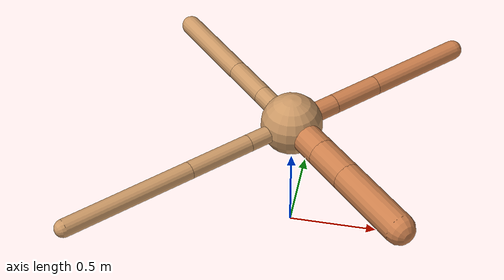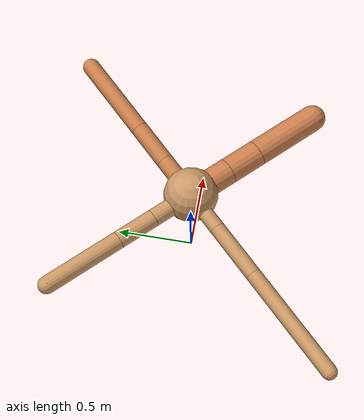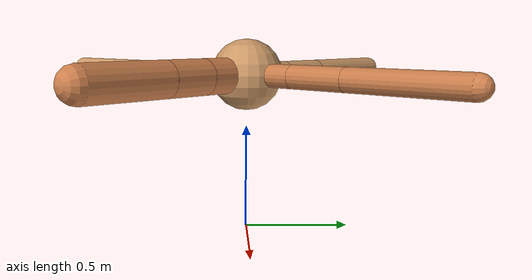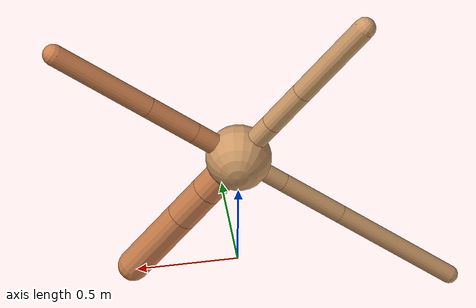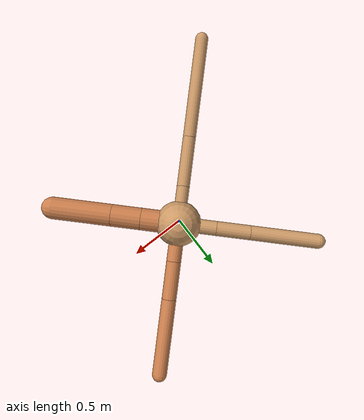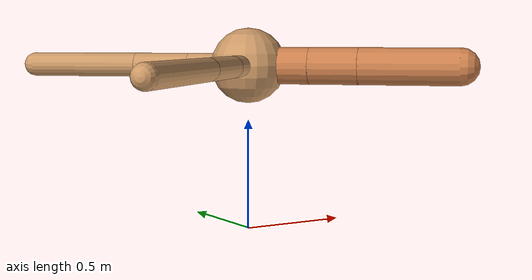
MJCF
<?xml version="1.0" ?>
<mujoco model="ant">

	<compiler angle="degree" coordinate="local" inertiafromgeom="true"/>

	<option integrator="RK4" timestep="0.01"/>

	<custom>

		<numeric data="0.0 0.0 0.55 1.0 0.0 0.0 0.0 0.0 1.0 0.0 -1.0 0.0 -1.0 0.0 1.0" name="init_qpos"/>

	</custom>

	<default>

		<joint armature="1" damping="1" limited="true"/>

		<geom conaffinity="0" condim="3" density="5.0" friction="1.5 0.1 0.1" margin="0.01" rgba="0.8 0.6 0.4 1"/>

	</default>

	<worldbody>

		<body name="torso" pos="0 0 0.75">

			<geom name="torso_geom" pos="0 0 0" size="0.17109702761558326" type="sphere"/>

			<!--joint armature="0" damping="0" limited="false" margin="0.01" name="root" pos="0 0 0" type="free"/-->

			<body name="front_left_leg" pos="0 0 0">

				<geom fromto="0 0 0 0.2 0.2 0" name="aux_1_geom" size="0.05527164087304699" type="capsule" rgba=".8 .5 .3 1"/>

				<body name="aux_1" pos="0.2 0.2 0">

					<joint axis="0 0 1" name="hip_1" pos="0.0 0.0 0.0" range="-40 40" type="hinge"/>

					<geom fromto="0 0 0 0.20141415832891374 0.20141415832891374 0" name="left_leg_geom" size="0.05527164087304699" type="capsule" rgba=".8 .5 .3 1"/>

					<body pos="0.20141415832891374 0.20141415832891374 0" name="front_left_foot">

						<joint axis="-1 1 0" name="ankle_1" pos="0.0 0.0 0.0" range="30 100" type="hinge"/>

						<geom fromto="0 0 0 0.4028283166578275 0.4028283166578275 0" name="left_ankle_geom" size="0.05527164087304699" type="capsule" rgba=".8 .5 .3 1"/>

					</body>

				</body>

			</body>

			<body name="front_right_leg" pos="0 0 0">

				<geom fromto="0 0 0 -0.2 0.2 0" name="aux_2_geom" size="0.05578105829354338" type="capsule"/>

				<body name="aux_2" pos="-0.2 0.2 0">

					<joint axis="0 0 1" name="hip_2" pos="0.0 0.0 0.0" range="-40 40" type="hinge"/>

					<geom fromto="0 0 0 -0.1809067582033539 0.1809067582033539 0" name="right_leg_geom" size="0.05578105829354338" type="capsule"/>

					<body pos="-0.1809067582033539 0.1809067582033539 0" name="front_right_foot">

						<joint axis="1 1 0" name="ankle_2" pos="0.0 0.0 0.0" range="-100 -30" type="hinge"/>

						<geom fromto="0 0 0 -0.3618135164067078 0.3618135164067078 0" name="right_ankle_geom" size="0.05578105829354338" type="capsule"/>

					</body>

				</body>

			</body>

			<body name="left_back_leg" pos="0 0 0">

				<geom fromto="0 0 0 -0.2 -0.2 0" name="aux_3_geom" size="0.04833949720185186" type="capsule"/>

				<body name="aux_3" pos="-0.2 -0.2 0">

					<joint axis="0 0 1" name="hip_3" pos="0.0 0.0 0.0" range="-40 40" type="hinge"/>

					<geom fromto="0 0 0 -0.26161589020976184 -0.26161589020976184 0" name="back_leg_geom" size="0.04833949720185186" type="capsule"/>

					<body pos="-0.26161589020976184 -0.26161589020976184 0" name="left_back_foot">

						<joint axis="-1 1 0" name="ankle_3" pos="0.0 0.0 0.0" range="-100 -30" type="hinge"/>

						<geom fromto="0 0 0 -0.5232317804195237 -0.5232317804195237 0" name="third_ankle_geom" size="0.04833949720185186" type="capsule"/>

					</body>

				</body>

			</body>

			<body name="right_back_leg" pos="0 0 0">

				<geom fromto="0 0 0 0.2 -0.2 0" name="aux_4_geom" size="0.0842649432558521" type="capsule" rgba=".8 .5 .3 1"/>

				<body name="aux_4" pos="0.2 -0.2 0">

					<joint axis="0 0 1" name="hip_4" pos="0.0 0.0 0.0" range="-40 40" type="hinge"/>

					<geom fromto="0 0 0 0.15663487527457237 -0.15663487527457237 0" name="rightback_leg_geom" size="0.0842649432558521" type="capsule" rgba=".8 .5 .3 1"/>

					<body pos="0.15663487527457237 -0.15663487527457237 0" name="right_back_foot">

						<joint axis="1 1 0" name="ankle_4" pos="0.0 0.0 0.0" range="30 100" type="hinge"/>

						<geom fromto="0 0 0 0.31326975054914474 -0.31326975054914474 0" name="fourth_ankle_geom" size="0.0842649432558521" type="capsule" rgba=".8 .5 .3 1"/>

					</body>

				</body>

			</body>

		</body>

	</worldbody>

	<actuator>

		<motor ctrllimited="true" ctrlrange="-1.0 1.0" joint="hip_4" gear="150"/>

		<motor ctrllimited="true" ctrlrange="-1.0 1.0" joint="ankle_4" gear="150"/>

		<motor ctrllimited="true" ctrlrange="-1.0 1.0" joint="hip_1" gear="150"/>

		<motor ctrllimited="true" ctrlrange="-1.0 1.0" joint="ankle_1" gear="150"/>

		<motor ctrllimited="true" ctrlrange="-1.0 1.0" joint="hip_2" gear="150"/>

		<motor ctrllimited="true" ctrlrange="-1.0 1.0" joint="ankle_2" gear="150"/>

		<motor ctrllimited="true" ctrlrange="-1.0 1.0" joint="hip_3" gear="150"/>

		<motor ctrllimited="true" ctrlrange="-1.0 1.0" joint="ankle_3" gear="150"/>

	</actuator>

</mujoco>
